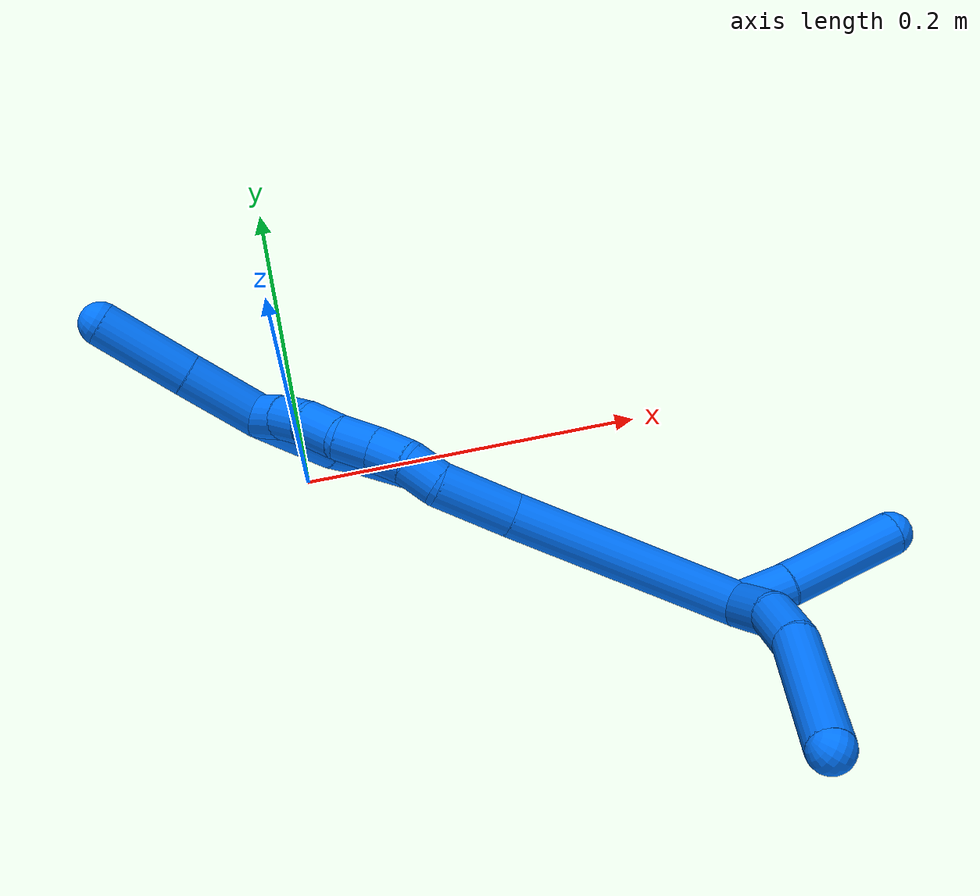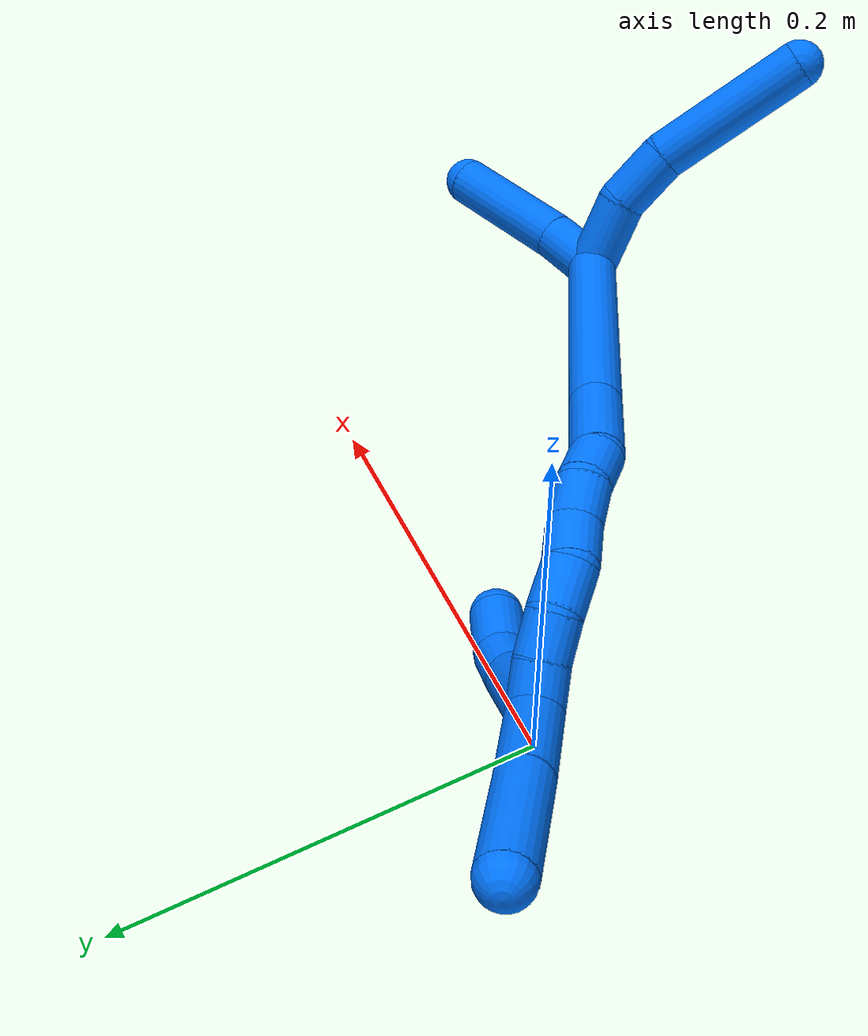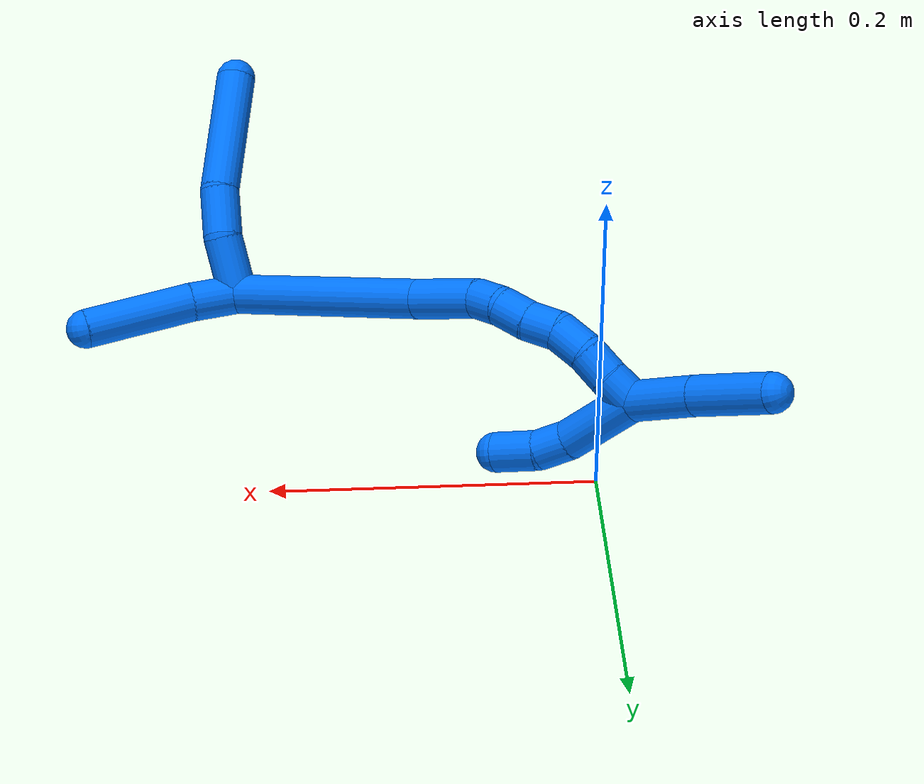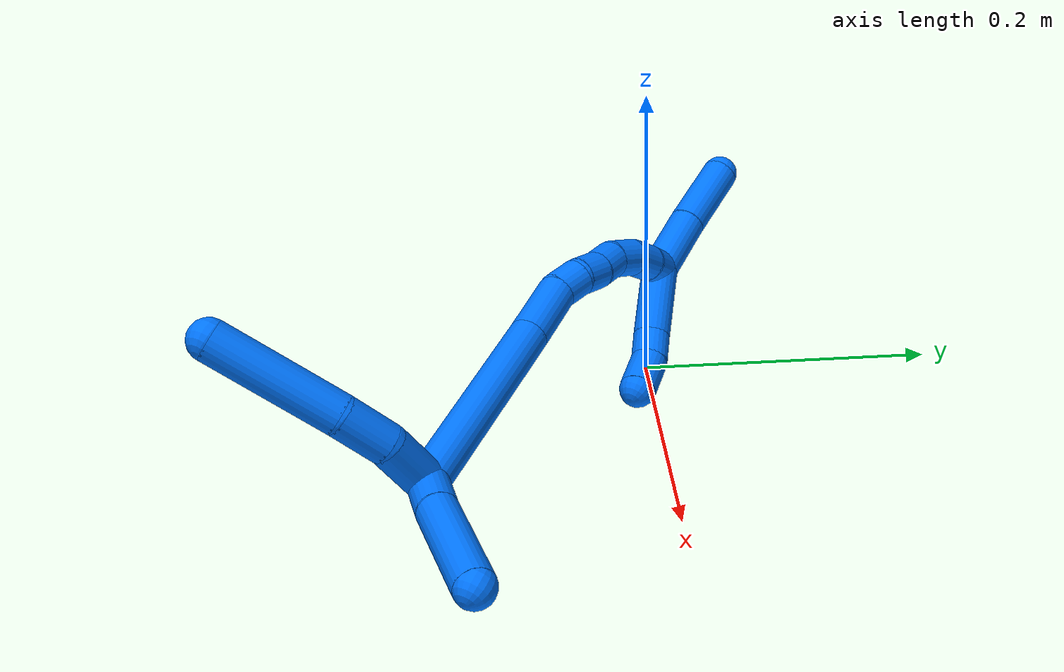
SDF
<sdf version="1.7">
 <world name="default">
  <model name="14">
   <static>0</static>
   <link name="14">
    <collision name="collision-cylinder-e_1_2_8">
     <pose>0.015175 -0.010986 -0.001692 1.7236 0.938616 1.0678</pose>
     <geometry><cylinder><radius>0.0125</radius><length>0.037621</length></cylinder></geometry>
     <surface>
      <friction><ode><mu>1.16</mu><mu2>1.16</mu2><slip1>0</slip1><slip2>0</slip2></ode></friction>
      <contact><ode><kp>1e+06</kp><kd>1</kd><max_vel>0</max_vel><min_depth>0.001</min_depth></ode></contact>
     </surface>
    </collision>
    <visual name="visual-cylinder-e_1_2_8">
     <pose>0.015175 -0.010986 -0.001692 1.7236 0.938616 1.0678</pose>
     <geometry><cylinder><radius>0.0125</radius><length>0.037621</length></cylinder></geometry>
     <material><ambient>0 0.462745 1 1</ambient></material>
    </visual>
    <collision name="collision-cylinder-e_2_8_9">
     <pose>0.039288 -0.034733 -0.005426 1.72949 0.605027 0.701734</pose>
     <geometry><cylinder><radius>0.0125</radius><length>0.031426</length></cylinder></geometry>
     <surface>
      <friction><ode><mu>1.16</mu><mu2>1.16</mu2><slip1>0</slip1><slip2>0</slip2></ode></friction>
      <contact><ode><kp>1e+06</kp><kd>1</kd><max_vel>0</max_vel><min_depth>0.001</min_depth></ode></contact>
     </surface>
    </collision>
    <visual name="visual-cylinder-e_2_8_9">
     <pose>0.039288 -0.034733 -0.005426 1.72949 0.605027 0.701734</pose>
     <geometry><cylinder><radius>0.0125</radius><length>0.031426</length></cylinder></geometry>
     <material><ambient>0 0.462745 1 1</ambient></material>
    </visual>
    <collision name="collision-cylinder-e_3_9_6">
     <pose>0.063536 -0.084866 -0.010169 1.64295 0.387922 0.416167</pose>
     <geometry><cylinder><radius>0.0125</radius><length>0.080953</length></cylinder></geometry>
     <surface>
      <friction><ode><mu>1.16</mu><mu2>1.16</mu2><slip1>0</slip1><slip2>0</slip2></ode></friction>
      <contact><ode><kp>1e+06</kp><kd>1</kd><max_vel>0</max_vel><min_depth>0.001</min_depth></ode></contact>
     </surface>
    </collision>
    <visual name="visual-cylinder-e_3_9_6">
     <pose>0.063536 -0.084866 -0.010169 1.64295 0.387922 0.416167</pose>
     <geometry><cylinder><radius>0.0125</radius><length>0.080953</length></cylinder></geometry>
     <material><ambient>0 0.462745 1 1</ambient></material>
    </visual>
    <collision name="collision-cylinder-e_1_2_10">
     <pose>0.006863 0.008915 -0.009956 -2.41128 0.474412 -1.12777</pose>
     <geometry><cylinder><radius>0.0125</radius><length>0.030047</length></cylinder></geometry>
     <surface>
      <friction><ode><mu>1.16</mu><mu2>1.16</mu2><slip1>0</slip1><slip2>0</slip2></ode></friction>
      <contact><ode><kp>1e+06</kp><kd>1</kd><max_vel>0</max_vel><min_depth>0.001</min_depth></ode></contact>
     </surface>
    </collision>
    <visual name="visual-cylinder-e_1_2_10">
     <pose>0.006863 0.008915 -0.009956 -2.41128 0.474412 -1.12777</pose>
     <geometry><cylinder><radius>0.0125</radius><length>0.030047</length></cylinder></geometry>
     <material><ambient>0 0.462745 1 1</ambient></material>
    </visual>
    <collision name="collision-cylinder-e_2_10_5">
     <pose>0.028388 0.041024 -0.041602 -2.32273 0.432562 -0.937371</pose>
     <geometry><cylinder><radius>0.0125</radius><length>0.069953</length></cylinder></geometry>
     <surface>
      <friction><ode><mu>1.16</mu><mu2>1.16</mu2><slip1>0</slip1><slip2>0</slip2></ode></friction>
      <contact><ode><kp>1e+06</kp><kd>1</kd><max_vel>0</max_vel><min_depth>0.001</min_depth></ode></contact>
     </surface>
    </collision>
    <visual name="visual-cylinder-e_2_10_5">
     <pose>0.028388 0.041024 -0.041602 -2.32273 0.432562 -0.937371</pose>
     <geometry><cylinder><radius>0.0125</radius><length>0.069953</length></cylinder></geometry>
     <material><ambient>0 0.462745 1 1</ambient></material>
    </visual>
    <collision name="collision-cylinder-e_1_2_11">
     <pose>-0.012706 -0.000612 0.065275 0.009368 -0.192244 -0.000903</pose>
     <geometry><cylinder><radius>0.0125</radius><length>0.133005</length></cylinder></geometry>
     <surface>
      <friction><ode><mu>1.16</mu><mu2>1.16</mu2><slip1>0</slip1><slip2>0</slip2></ode></friction>
      <contact><ode><kp>1e+06</kp><kd>1</kd><max_vel>0</max_vel><min_depth>0.001</min_depth></ode></contact>
     </surface>
    </collision>
    <visual name="visual-cylinder-e_1_2_11">
     <pose>-0.012706 -0.000612 0.065275 0.009368 -0.192244 -0.000903</pose>
     <geometry><cylinder><radius>0.0125</radius><length>0.133005</length></cylinder></geometry>
     <material><ambient>0 0.462745 1 1</ambient></material>
    </visual>
    <collision name="collision-cylinder-e_2_11_12">
     <pose>-0.028751 -0.001589 0.151649 0.017349 -0.15693 -0.001364</pose>
     <geometry><cylinder><radius>0.0125</radius><length>0.042731</length></cylinder></geometry>
     <surface>
      <friction><ode><mu>1.16</mu><mu2>1.16</mu2><slip1>0</slip1><slip2>0</slip2></ode></friction>
      <contact><ode><kp>1e+06</kp><kd>1</kd><max_vel>0</max_vel><min_depth>0.001</min_depth></ode></contact>
     </surface>
    </collision>
    <visual name="visual-cylinder-e_2_11_12">
     <pose>-0.028751 -0.001589 0.151649 0.017349 -0.15693 -0.001364</pose>
     <geometry><cylinder><radius>0.0125</radius><length>0.042731</length></cylinder></geometry>
     <material><ambient>0 0.462745 1 1</ambient></material>
    </visual>
    <collision name="collision-cylinder-e_3_12_13">
     <pose>-0.03391 0.000998 0.182205 -0.302706 -0.181652 0.02778</pose>
     <geometry><cylinder><radius>0.0125</radius><length>0.020146</length></cylinder></geometry>
     <surface>
      <friction><ode><mu>1.16</mu><mu2>1.16</mu2><slip1>0</slip1><slip2>0</slip2></ode></friction>
      <contact><ode><kp>1e+06</kp><kd>1</kd><max_vel>0</max_vel><min_depth>0.001</min_depth></ode></contact>
     </surface>
    </collision>
    <visual name="visual-cylinder-e_3_12_13">
     <pose>-0.03391 0.000998 0.182205 -0.302706 -0.181652 0.02778</pose>
     <geometry><cylinder><radius>0.0125</radius><length>0.020146</length></cylinder></geometry>
     <material><ambient>0 0.462745 1 1</ambient></material>
    </visual>
    <collision name="collision-cylinder-e_4_13_14">
     <pose>-0.040747 0.006695 0.20034 -0.306249 -0.503781 0.079395</pose>
     <geometry><cylinder><radius>0.0125</radius><length>0.020784</length></cylinder></geometry>
     <surface>
      <friction><ode><mu>1.16</mu><mu2>1.16</mu2><slip1>0</slip1><slip2>0</slip2></ode></friction>
      <contact><ode><kp>1e+06</kp><kd>1</kd><max_vel>0</max_vel><min_depth>0.001</min_depth></ode></contact>
     </surface>
    </collision>
    <visual name="visual-cylinder-e_4_13_14">
     <pose>-0.040747 0.006695 0.20034 -0.306249 -0.503781 0.079395</pose>
     <geometry><cylinder><radius>0.0125</radius><length>0.020784</length></cylinder></geometry>
     <material><ambient>0 0.462745 1 1</ambient></material>
    </visual>
    <collision name="collision-cylinder-e_5_14_15">
     <pose>-0.050126 0.010706 0.218335 -0.135162 -0.434412 0.029872</pose>
     <geometry><cylinder><radius>0.0125</radius><length>0.020732</length></cylinder></geometry>
     <surface>
      <friction><ode><mu>1.16</mu><mu2>1.16</mu2><slip1>0</slip1><slip2>0</slip2></ode></friction>
      <contact><ode><kp>1e+06</kp><kd>1</kd><max_vel>0</max_vel><min_depth>0.001</min_depth></ode></contact>
     </surface>
    </collision>
    <visual name="visual-cylinder-e_5_14_15">
     <pose>-0.050126 0.010706 0.218335 -0.135162 -0.434412 0.029872</pose>
     <geometry><cylinder><radius>0.0125</radius><length>0.020732</length></cylinder></geometry>
     <material><ambient>0 0.462745 1 1</ambient></material>
    </visual>
    <collision name="collision-cylinder-e_6_15_16">
     <pose>-0.060715 0.016289 0.235992 -0.477615 -0.585456 0.146484</pose>
     <geometry><cylinder><radius>0.0125</radius><length>0.022532</length></cylinder></geometry>
     <surface>
      <friction><ode><mu>1.16</mu><mu2>1.16</mu2><slip1>0</slip1><slip2>0</slip2></ode></friction>
      <contact><ode><kp>1e+06</kp><kd>1</kd><max_vel>0</max_vel><min_depth>0.001</min_depth></ode></contact>
     </surface>
    </collision>
    <visual name="visual-cylinder-e_6_15_16">
     <pose>-0.060715 0.016289 0.235992 -0.477615 -0.585456 0.146484</pose>
     <geometry><cylinder><radius>0.0125</radius><length>0.022532</length></cylinder></geometry>
     <material><ambient>0 0.462745 1 1</ambient></material>
    </visual>
    <collision name="collision-cylinder-e_7_16_17">
     <pose>-0.074305 0.024547 0.249835 -0.621318 -0.827482 0.280095</pose>
     <geometry><cylinder><radius>0.0125</radius><length>0.020008</length></cylinder></geometry>
     <surface>
      <friction><ode><mu>1.16</mu><mu2>1.16</mu2><slip1>0</slip1><slip2>0</slip2></ode></friction>
      <contact><ode><kp>1e+06</kp><kd>1</kd><max_vel>0</max_vel><min_depth>0.001</min_depth></ode></contact>
     </surface>
    </collision>
    <visual name="visual-cylinder-e_7_16_17">
     <pose>-0.074305 0.024547 0.249835 -0.621318 -0.827482 0.280095</pose>
     <geometry><cylinder><radius>0.0125</radius><length>0.020008</length></cylinder></geometry>
     <material><ambient>0 0.462745 1 1</ambient></material>
    </visual>
    <collision name="collision-cylinder-e_8_17_1">
     <pose>-0.089647 0.031293 0.260737 -0.479342 -0.919296 0.24076</pose>
     <geometry><cylinder><radius>0.0125</radius><length>0.020061</length></cylinder></geometry>
     <surface>
      <friction><ode><mu>1.16</mu><mu2>1.16</mu2><slip1>0</slip1><slip2>0</slip2></ode></friction>
      <contact><ode><kp>1e+06</kp><kd>1</kd><max_vel>0</max_vel><min_depth>0.001</min_depth></ode></contact>
     </surface>
    </collision>
    <visual name="visual-cylinder-e_8_17_1">
     <pose>-0.089647 0.031293 0.260737 -0.479342 -0.919296 0.24076</pose>
     <geometry><cylinder><radius>0.0125</radius><length>0.020061</length></cylinder></geometry>
     <material><ambient>0 0.462745 1 1</ambient></material>
    </visual>
    <collision name="collision-cylinder-e_1_1_18">
     <pose>-0.103449 0.041983 0.242605 -2.81821 -0.230634 1.23497</pose>
     <geometry><cylinder><radius>0.0125</radius><length>0.050979</length></cylinder></geometry>
     <surface>
      <friction><ode><mu>1.16</mu><mu2>1.16</mu2><slip1>0</slip1><slip2>0</slip2></ode></friction>
      <contact><ode><kp>1e+06</kp><kd>1</kd><max_vel>0</max_vel><min_depth>0.001</min_depth></ode></contact>
     </surface>
    </collision>
    <visual name="visual-cylinder-e_1_1_18">
     <pose>-0.103449 0.041983 0.242605 -2.81821 -0.230634 1.23497</pose>
     <geometry><cylinder><radius>0.0125</radius><length>0.050979</length></cylinder></geometry>
     <material><ambient>0 0.462745 1 1</ambient></material>
    </visual>
    <collision name="collision-cylinder-e_2_18_19">
     <pose>-0.109024 0.053404 0.209196 -2.79795 0.024054 -0.138398</pose>
     <geometry><cylinder><radius>0.0125</radius><length>0.020995</length></cylinder></geometry>
     <surface>
      <friction><ode><mu>1.16</mu><mu2>1.16</mu2><slip1>0</slip1><slip2>0</slip2></ode></friction>
      <contact><ode><kp>1e+06</kp><kd>1</kd><max_vel>0</max_vel><min_depth>0.001</min_depth></ode></contact>
     </surface>
    </collision>
    <visual name="visual-cylinder-e_2_18_19">
     <pose>-0.109024 0.053404 0.209196 -2.79795 0.024054 -0.138398</pose>
     <geometry><cylinder><radius>0.0125</radius><length>0.020995</length></cylinder></geometry>
     <material><ambient>0 0.462745 1 1</ambient></material>
    </visual>
    <collision name="collision-cylinder-e_3_19_4">
     <pose>-0.106143 0.058701 0.185664 -3.01329 0.188666 -1.94867</pose>
     <geometry><cylinder><radius>0.0125</radius><length>0.028026</length></cylinder></geometry>
     <surface>
      <friction><ode><mu>1.16</mu><mu2>1.16</mu2><slip1>0</slip1><slip2>0</slip2></ode></friction>
      <contact><ode><kp>1e+06</kp><kd>1</kd><max_vel>0</max_vel><min_depth>0.001</min_depth></ode></contact>
     </surface>
    </collision>
    <visual name="visual-cylinder-e_3_19_4">
     <pose>-0.106143 0.058701 0.185664 -3.01329 0.188666 -1.94867</pose>
     <geometry><cylinder><radius>0.0125</radius><length>0.028026</length></cylinder></geometry>
     <material><ambient>0 0.462745 1 1</ambient></material>
    </visual>
    <collision name="collision-cylinder-e_1_1_20">
     <pose>-0.097686 0.034578 0.289118 -0.020897 -0.002754 2.9e-05</pose>
     <geometry><cylinder><radius>0.0125</radius><length>0.045979</length></cylinder></geometry>
     <surface>
      <friction><ode><mu>1.16</mu><mu2>1.16</mu2><slip1>0</slip1><slip2>0</slip2></ode></friction>
      <contact><ode><kp>1e+06</kp><kd>1</kd><max_vel>0</max_vel><min_depth>0.001</min_depth></ode></contact>
     </surface>
    </collision>
    <visual name="visual-cylinder-e_1_1_20">
     <pose>-0.097686 0.034578 0.289118 -0.020897 -0.002754 2.9e-05</pose>
     <geometry><cylinder><radius>0.0125</radius><length>0.045979</length></cylinder></geometry>
     <material><ambient>0 0.462745 1 1</ambient></material>
    </visual>
    <collision name="collision-cylinder-e_2_20_3">
     <pose>-0.098436 0.036522 0.339065 -0.054237 -0.025425 0.00069</pose>
     <geometry><cylinder><radius>0.0125</radius><length>0.054021</length></cylinder></geometry>
     <surface>
      <friction><ode><mu>1.16</mu><mu2>1.16</mu2><slip1>0</slip1><slip2>0</slip2></ode></friction>
      <contact><ode><kp>1e+06</kp><kd>1</kd><max_vel>0</max_vel><min_depth>0.001</min_depth></ode></contact>
     </surface>
    </collision>
    <visual name="visual-cylinder-e_2_20_3">
     <pose>-0.098436 0.036522 0.339065 -0.054237 -0.025425 0.00069</pose>
     <geometry><cylinder><radius>0.0125</radius><length>0.054021</length></cylinder></geometry>
     <material><ambient>0 0.462745 1 1</ambient></material>
    </visual>
    <collision name="collision-sphere-3">
     <pose>-0.099123 0.037986 0.366027 0 -0 0</pose>
     <geometry><sphere><radius>0.0125</radius></sphere></geometry>
     <surface>
      <friction><ode><mu>1.16</mu><mu2>1.16</mu2><slip1>0</slip1><slip2>0</slip2></ode></friction>
      <contact><ode><kp>1e+06</kp><kd>1</kd><max_vel>0</max_vel><min_depth>0.001</min_depth></ode></contact>
     </surface>
    </collision>
    <visual name="visual-sphere-3">
     <pose>-0.099123 0.037986 0.366027 0 -0 0</pose>
     <geometry><sphere><radius>0.0125</radius></sphere></geometry>
     <material><ambient>0 0.462745 1 1</ambient></material>
    </visual>
    <collision name="collision-sphere-20">
     <pose>-0.097749 0.035058 0.312103 0 -0 0</pose>
     <geometry><sphere><radius>0.0125</radius></sphere></geometry>
     <surface>
      <friction><ode><mu>1.16</mu><mu2>1.16</mu2><slip1>0</slip1><slip2>0</slip2></ode></friction>
      <contact><ode><kp>1e+06</kp><kd>1</kd><max_vel>0</max_vel><min_depth>0.001</min_depth></ode></contact>
     </surface>
    </collision>
    <visual name="visual-sphere-20">
     <pose>-0.097749 0.035058 0.312103 0 -0 0</pose>
     <geometry><sphere><radius>0.0125</radius></sphere></geometry>
     <material><ambient>0 0.462745 1 1</ambient></material>
    </visual>
    <collision name="collision-sphere-4">
     <pose>-0.103515 0.060462 0.172013 0 -0 0</pose>
     <geometry><sphere><radius>0.0125</radius></sphere></geometry>
     <surface>
      <friction><ode><mu>1.16</mu><mu2>1.16</mu2><slip1>0</slip1><slip2>0</slip2></ode></friction>
      <contact><ode><kp>1e+06</kp><kd>1</kd><max_vel>0</max_vel><min_depth>0.001</min_depth></ode></contact>
     </surface>
    </collision>
    <visual name="visual-sphere-4">
     <pose>-0.103515 0.060462 0.172013 0 -0 0</pose>
     <geometry><sphere><radius>0.0125</radius></sphere></geometry>
     <material><ambient>0 0.462745 1 1</ambient></material>
    </visual>
    <collision name="collision-sphere-5">
     <pose>0.04305 0.064216 -0.063293 0 -0 0</pose>
     <geometry><sphere><radius>0.0125</radius></sphere></geometry>
     <surface>
      <friction><ode><mu>1.16</mu><mu2>1.16</mu2><slip1>0</slip1><slip2>0</slip2></ode></friction>
      <contact><ode><kp>1e+06</kp><kd>1</kd><max_vel>0</max_vel><min_depth>0.001</min_depth></ode></contact>
     </surface>
    </collision>
    <visual name="visual-sphere-5">
     <pose>0.04305 0.064216 -0.063293 0 -0 0</pose>
     <geometry><sphere><radius>0.0125</radius></sphere></geometry>
     <material><ambient>0 0.462745 1 1</ambient></material>
    </visual>
    <collision name="collision-sphere-10">
     <pose>0.013726 0.017831 -0.019912 0 -0 0</pose>
     <geometry><sphere><radius>0.0125</radius></sphere></geometry>
     <surface>
      <friction><ode><mu>1.16</mu><mu2>1.16</mu2><slip1>0</slip1><slip2>0</slip2></ode></friction>
      <contact><ode><kp>1e+06</kp><kd>1</kd><max_vel>0</max_vel><min_depth>0.001</min_depth></ode></contact>
     </surface>
    </collision>
    <visual name="visual-sphere-10">
     <pose>0.013726 0.017831 -0.019912 0 -0 0</pose>
     <geometry><sphere><radius>0.0125</radius></sphere></geometry>
     <material><ambient>0 0.462745 1 1</ambient></material>
    </visual>
    <collision name="collision-sphere-6">
     <pose>0.078847 -0.122237 -0.01287 0 -0 0</pose>
     <geometry><sphere><radius>0.0125</radius></sphere></geometry>
     <surface>
      <friction><ode><mu>1.16</mu><mu2>1.16</mu2><slip1>0</slip1><slip2>0</slip2></ode></friction>
      <contact><ode><kp>1e+06</kp><kd>1</kd><max_vel>0</max_vel><min_depth>0.001</min_depth></ode></contact>
     </surface>
    </collision>
    <visual name="visual-sphere-6">
     <pose>0.078847 -0.122237 -0.01287 0 -0 0</pose>
     <geometry><sphere><radius>0.0125</radius></sphere></geometry>
     <material><ambient>0 0.462745 1 1</ambient></material>
    </visual>
    <collision name="collision-sphere-9">
     <pose>0.048225 -0.047494 -0.007468 0 -0 0</pose>
     <geometry><sphere><radius>0.0125</radius></sphere></geometry>
     <surface>
      <friction><ode><mu>1.16</mu><mu2>1.16</mu2><slip1>0</slip1><slip2>0</slip2></ode></friction>
      <contact><ode><kp>1e+06</kp><kd>1</kd><max_vel>0</max_vel><min_depth>0.001</min_depth></ode></contact>
     </surface>
    </collision>
    <visual name="visual-sphere-9">
     <pose>0.048225 -0.047494 -0.007468 0 -0 0</pose>
     <geometry><sphere><radius>0.0125</radius></sphere></geometry>
     <material><ambient>0 0.462745 1 1</ambient></material>
    </visual>
    <collision name="collision-sphere-2">
     <geometry><sphere><radius>0.0125</radius></sphere></geometry>
     <surface>
      <friction><ode><mu>1.16</mu><mu2>1.16</mu2><slip1>0</slip1><slip2>0</slip2></ode></friction>
      <contact><ode><kp>1e+06</kp><kd>1</kd><max_vel>0</max_vel><min_depth>0.001</min_depth></ode></contact>
     </surface>
    </collision>
    <visual name="visual-sphere-2">
     <geometry><sphere><radius>0.0125</radius></sphere></geometry>
     <material><ambient>0 0.462745 1 1</ambient></material>
    </visual>
    <collision name="collision-sphere-19">
     <pose>-0.108771 0.05694 0.199315 0 -0 0</pose>
     <geometry><sphere><radius>0.0125</radius></sphere></geometry>
     <surface>
      <friction><ode><mu>1.16</mu><mu2>1.16</mu2><slip1>0</slip1><slip2>0</slip2></ode></friction>
      <contact><ode><kp>1e+06</kp><kd>1</kd><max_vel>0</max_vel><min_depth>0.001</min_depth></ode></contact>
     </surface>
    </collision>
    <visual name="visual-sphere-19">
     <pose>-0.108771 0.05694 0.199315 0 -0 0</pose>
     <geometry><sphere><radius>0.0125</radius></sphere></geometry>
     <material><ambient>0 0.462745 1 1</ambient></material>
    </visual>
    <collision name="collision-sphere-8">
     <pose>0.03035 -0.021971 -0.003384 0 -0 0</pose>
     <geometry><sphere><radius>0.0125</radius></sphere></geometry>
     <surface>
      <friction><ode><mu>1.16</mu><mu2>1.16</mu2><slip1>0</slip1><slip2>0</slip2></ode></friction>
      <contact><ode><kp>1e+06</kp><kd>1</kd><max_vel>0</max_vel><min_depth>0.001</min_depth></ode></contact>
     </surface>
    </collision>
    <visual name="visual-sphere-8">
     <pose>0.03035 -0.021971 -0.003384 0 -0 0</pose>
     <geometry><sphere><radius>0.0125</radius></sphere></geometry>
     <material><ambient>0 0.462745 1 1</ambient></material>
    </visual>
    <collision name="collision-sphere-11">
     <pose>-0.025412 -0.001223 0.130549 0 -0 0</pose>
     <geometry><sphere><radius>0.0125</radius></sphere></geometry>
     <surface>
      <friction><ode><mu>1.16</mu><mu2>1.16</mu2><slip1>0</slip1><slip2>0</slip2></ode></friction>
      <contact><ode><kp>1e+06</kp><kd>1</kd><max_vel>0</max_vel><min_depth>0.001</min_depth></ode></contact>
     </surface>
    </collision>
    <visual name="visual-sphere-11">
     <pose>-0.025412 -0.001223 0.130549 0 -0 0</pose>
     <geometry><sphere><radius>0.0125</radius></sphere></geometry>
     <material><ambient>0 0.462745 1 1</ambient></material>
    </visual>
    <collision name="collision-sphere-12">
     <pose>-0.032091 -0.001955 0.172749 0 -0 0</pose>
     <geometry><sphere><radius>0.0125</radius></sphere></geometry>
     <surface>
      <friction><ode><mu>1.16</mu><mu2>1.16</mu2><slip1>0</slip1><slip2>0</slip2></ode></friction>
      <contact><ode><kp>1e+06</kp><kd>1</kd><max_vel>0</max_vel><min_depth>0.001</min_depth></ode></contact>
     </surface>
    </collision>
    <visual name="visual-sphere-12">
     <pose>-0.032091 -0.001955 0.172749 0 -0 0</pose>
     <geometry><sphere><radius>0.0125</radius></sphere></geometry>
     <material><ambient>0 0.462745 1 1</ambient></material>
    </visual>
    <collision name="collision-sphere-13">
     <pose>-0.03573 0.003951 0.191662 0 -0 0</pose>
     <geometry><sphere><radius>0.0125</radius></sphere></geometry>
     <surface>
      <friction><ode><mu>1.16</mu><mu2>1.16</mu2><slip1>0</slip1><slip2>0</slip2></ode></friction>
      <contact><ode><kp>1e+06</kp><kd>1</kd><max_vel>0</max_vel><min_depth>0.001</min_depth></ode></contact>
     </surface>
    </collision>
    <visual name="visual-sphere-13">
     <pose>-0.03573 0.003951 0.191662 0 -0 0</pose>
     <geometry><sphere><radius>0.0125</radius></sphere></geometry>
     <material><ambient>0 0.462745 1 1</ambient></material>
    </visual>
    <collision name="collision-sphere-14">
     <pose>-0.045763 0.009439 0.209017 0 -0 0</pose>
     <geometry><sphere><radius>0.0125</radius></sphere></geometry>
     <surface>
      <friction><ode><mu>1.16</mu><mu2>1.16</mu2><slip1>0</slip1><slip2>0</slip2></ode></friction>
      <contact><ode><kp>1e+06</kp><kd>1</kd><max_vel>0</max_vel><min_depth>0.001</min_depth></ode></contact>
     </surface>
    </collision>
    <visual name="visual-sphere-14">
     <pose>-0.045763 0.009439 0.209017 0 -0 0</pose>
     <geometry><sphere><radius>0.0125</radius></sphere></geometry>
     <material><ambient>0 0.462745 1 1</ambient></material>
    </visual>
    <collision name="collision-sphere-15">
     <pose>-0.054489 0.011973 0.227653 0 -0 0</pose>
     <geometry><sphere><radius>0.0125</radius></sphere></geometry>
     <surface>
      <friction><ode><mu>1.16</mu><mu2>1.16</mu2><slip1>0</slip1><slip2>0</slip2></ode></friction>
      <contact><ode><kp>1e+06</kp><kd>1</kd><max_vel>0</max_vel><min_depth>0.001</min_depth></ode></contact>
     </surface>
    </collision>
    <visual name="visual-sphere-15">
     <pose>-0.054489 0.011973 0.227653 0 -0 0</pose>
     <geometry><sphere><radius>0.0125</radius></sphere></geometry>
     <material><ambient>0 0.462745 1 1</ambient></material>
    </visual>
    <collision name="collision-sphere-16">
     <pose>-0.06694 0.020606 0.244331 0 -0 0</pose>
     <geometry><sphere><radius>0.0125</radius></sphere></geometry>
     <surface>
      <friction><ode><mu>1.16</mu><mu2>1.16</mu2><slip1>0</slip1><slip2>0</slip2></ode></friction>
      <contact><ode><kp>1e+06</kp><kd>1</kd><max_vel>0</max_vel><min_depth>0.001</min_depth></ode></contact>
     </surface>
    </collision>
    <visual name="visual-sphere-16">
     <pose>-0.06694 0.020606 0.244331 0 -0 0</pose>
     <geometry><sphere><radius>0.0125</radius></sphere></geometry>
     <material><ambient>0 0.462745 1 1</ambient></material>
    </visual>
    <collision name="collision-sphere-17">
     <pose>-0.08167 0.028487 0.25534 0 -0 0</pose>
     <geometry><sphere><radius>0.0125</radius></sphere></geometry>
     <surface>
      <friction><ode><mu>1.16</mu><mu2>1.16</mu2><slip1>0</slip1><slip2>0</slip2></ode></friction>
      <contact><ode><kp>1e+06</kp><kd>1</kd><max_vel>0</max_vel><min_depth>0.001</min_depth></ode></contact>
     </surface>
    </collision>
    <visual name="visual-sphere-17">
     <pose>-0.08167 0.028487 0.25534 0 -0 0</pose>
     <geometry><sphere><radius>0.0125</radius></sphere></geometry>
     <material><ambient>0 0.462745 1 1</ambient></material>
    </visual>
    <collision name="collision-sphere-1">
     <pose>-0.097623 0.034098 0.266134 0 -0 0</pose>
     <geometry><sphere><radius>0.0125</radius></sphere></geometry>
     <surface>
      <friction><ode><mu>1.16</mu><mu2>1.16</mu2><slip1>0</slip1><slip2>0</slip2></ode></friction>
      <contact><ode><kp>1e+06</kp><kd>1</kd><max_vel>0</max_vel><min_depth>0.001</min_depth></ode></contact>
     </surface>
    </collision>
    <visual name="visual-sphere-1">
     <pose>-0.097623 0.034098 0.266134 0 -0 0</pose>
     <geometry><sphere><radius>0.0125</radius></sphere></geometry>
     <material><ambient>0 0.462745 1 1</ambient></material>
    </visual>
    <collision name="collision-sphere-18">
     <pose>-0.109276 0.049869 0.219077 0 -0 0</pose>
     <geometry><sphere><radius>0.0125</radius></sphere></geometry>
     <surface>
      <friction><ode><mu>1.16</mu><mu2>1.16</mu2><slip1>0</slip1><slip2>0</slip2></ode></friction>
      <contact><ode><kp>1e+06</kp><kd>1</kd><max_vel>0</max_vel><min_depth>0.001</min_depth></ode></contact>
     </surface>
    </collision>
    <visual name="visual-sphere-18">
     <pose>-0.109276 0.049869 0.219077 0 -0 0</pose>
     <geometry><sphere><radius>0.0125</radius></sphere></geometry>
     <material><ambient>0 0.462745 1 1</ambient></material>
    </visual>
    <inertial>
     <pose>-0.028462 0.0066 0.123169 0 -0 0</pose>
     <mass>0.75</mass>
     <inertia>
      <ixx>0.000314</ixx>
      <ixy>0</ixy>
      <ixz>0</ixz>
      <iyy>0.000251</iyy>
      <iyz>0</iyz>
      <izz>4.4e-05</izz>
     </inertia>
    </inertial>
   </link>
   <pose>0.216611 -0.148227 0.047256 -0.540749 -1.04626 0.02621</pose>
  </model>
 </world>
</sdf>
